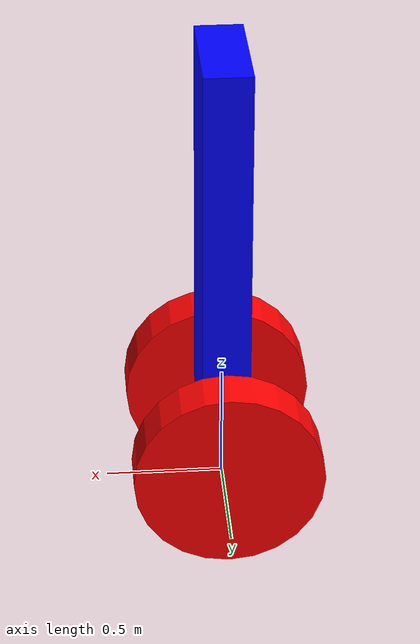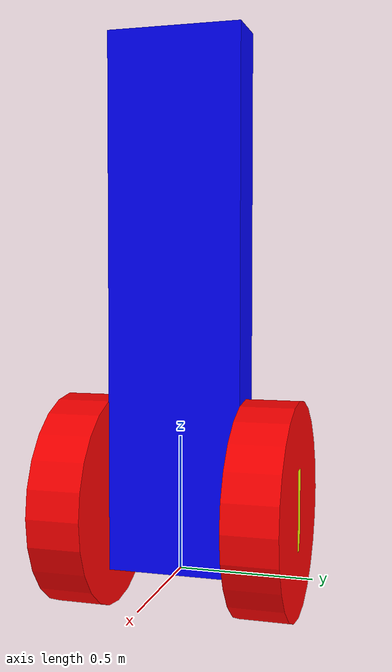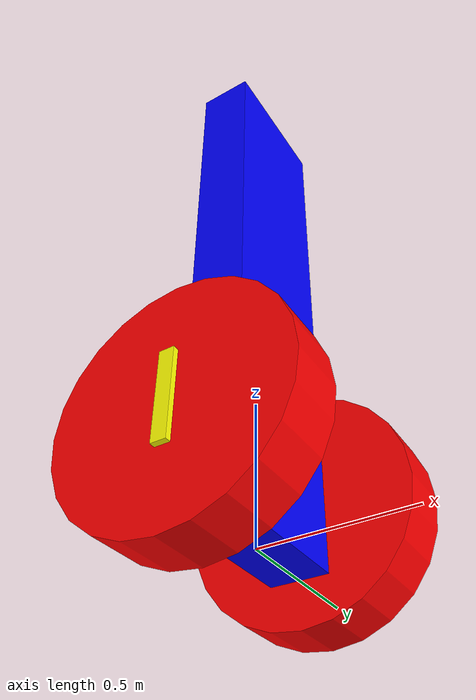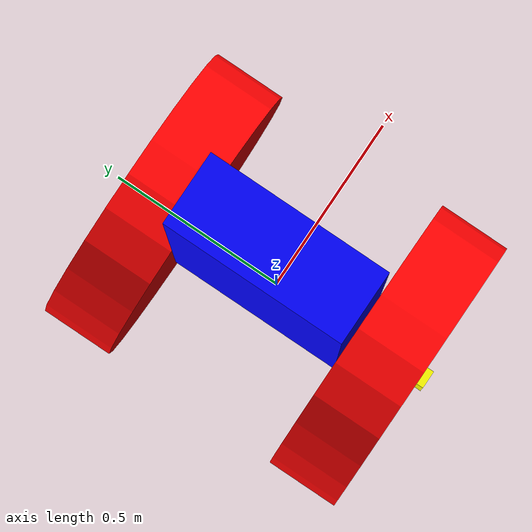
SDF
<?xml version="1.0" ?>
<sdf version="1.9">
    <model name='segway' canonical_link='chassis'>

        <link name='chassis'>
            <sensor name="imu_sensor" type="imu">
                <pose>0 0 0 0 0 0</pose>
                <topic>imu</topic>
                <update_rate>100</update_rate>
                <always_on>true</always_on>
            </sensor>
            <pose relative_to='__model__'>0 0 0.25 0 0 0</pose>

            <inertial auto="true"> <!--inertial properties of the link mass, inertia matix-->
                <mass>1.14395</mass>
            </inertial>

            <visual name='visual'>
                <pose>0 0 0.75 0 0 0</pose>
                <geometry>
                    <box>
                        <size>0.2 0.5 2.0</size>
                    </box>
                </geometry>
                <!--let's add color to our link-->
                <material>
                    <ambient>0.0 0.0 1.0 1</ambient>
                    <diffuse>0.0 0.0 1.0 1</diffuse>
                    <specular>0.0 0.0 1.0 1</specular>
                </material>
            </visual>
            <collision name='collision'>
            <pose>0 0 0.75 0 0 0</pose>
                <geometry>
                    <box>
                        <size>0.2 0.5 2.0</size>
                    </box>
                </geometry>
            </collision>
        </link>

        <link name='left_wheel'>
            <pose relative_to="chassis">0.0 0.35 0.0 -1.5707 0 0</pose>
            <inertial auto="true">
                <mass>1.0</mass>
            </inertial>
            <visual name='visual'>
                <geometry>
                    <cylinder>
                        <radius>0.4</radius>
                        <length>0.2</length>
                    </cylinder>
                </geometry>
                <material>
                    <ambient>1.0 0.0 0.0 1</ambient>
                    <diffuse>1.0 0.0 0.0 1</diffuse>
                    <specular>1.0 0.0 0.0 1</specular>
                </material>
            </visual>
            <visual name="rotation_marker">
                <!-- Marker etwas außerhalb der Radflaeche -->
                <pose>0 0 -0.01 0 0 0</pose>

                <geometry>
                    <box>
                        <size>0.05 0.30 0.22</size>
                    </box>
                </geometry>

                <material>
                    <ambient>1 1 0 1</ambient>
                    <diffuse>1 1 0 1</diffuse>
                </material>
            </visual>
            <collision name='collision'>
                <geometry>
                    <cylinder>
                        <radius>0.4</radius>
                        <length>0.2</length>
                    </cylinder>
                </geometry>
            </collision>
        </link>

        <!--The same as left wheel but with different position-->
        <link name='right_wheel'>
            <pose relative_to="chassis">0.0 -0.35 0.0 -1.5707 0 0</pose> <!--angles are in radian-->
            <inertial auto="true">
                <mass>1.0</mass>
            </inertial>
            <visual name='visual'>
                <geometry>
                    <cylinder>
                        <radius>0.4</radius>
                        <length>0.2</length>
                    </cylinder>
                </geometry>
                <material>
                    <ambient>1.0 0.0 0.0 1</ambient>
                    <diffuse>1.0 0.0 0.0 1</diffuse>
                    <specular>1.0 0.0 0.0 1</specular>
                </material>
            </visual>
            <visual name="rotation_marker">
                <!-- Marker etwas außerhalb der Radfläche -->
                <pose>0 0 -0.01 0 0 0</pose>

                <geometry>
                    <box>
                        <size>0.05 0.30 0.22</size>
                    </box>
                </geometry>

                <material>
                    <ambient>1 1 0 1</ambient>
                    <diffuse>1 1 0 1</diffuse>
                </material>
            </visual>
            <collision name='collision'>
                <geometry>
                    <cylinder>
                        <radius>0.4</radius>
                        <length>0.2</length>
                    </cylinder>
                </geometry>
            </collision>
        </link>

        <frame name="caster_frame" attached_to='chassis'>
            <pose>0.8 0 -0.2 0 0 0</pose>
        </frame>

        <joint name='left_wheel_joint' type='revolute'>
            <pose relative_to='left_wheel'/>
            <parent>chassis</parent>
            <child>left_wheel</child>
            <axis>
                <xyz expressed_in='__model__'>0 1 0</xyz> <!--can be defined as any frame or even arbitrary frames-->
                <limit>
                    <lower>-1.79769e+308</lower>    <!--negative infinity-->
                    <upper>1.79769e+308</upper>     <!--positive infinity-->
                </limit>
            </axis>
        </joint>

        <joint name='right_wheel_joint' type='revolute'>
            <pose relative_to='right_wheel'/>
            <parent>chassis</parent>
            <child>right_wheel</child>
            <axis>
                <xyz expressed_in='__model__'>0 1 0</xyz>
                <limit>
                    <lower>-1.79769e+308</lower>    <!--negative infinity-->
                    <upper>1.79769e+308</upper>     <!--positive infinity-->
                </limit>
            </axis>
        </joint>

        <plugin
            filename="gz-sim-diff-drive-system"
            name="gz::sim::systems::DiffDrive">
            <left_joint>left_wheel_joint</left_joint>
            <right_joint>right_wheel_joint</right_joint>
            <wheel_separation>0.7</wheel_separation>
            <wheel_radius>0.4</wheel_radius>
            <odom_publish_frequency>50</odom_publish_frequency>
            <topic>cmd_vel</topic>
        </plugin>
    </model>

</sdf>
